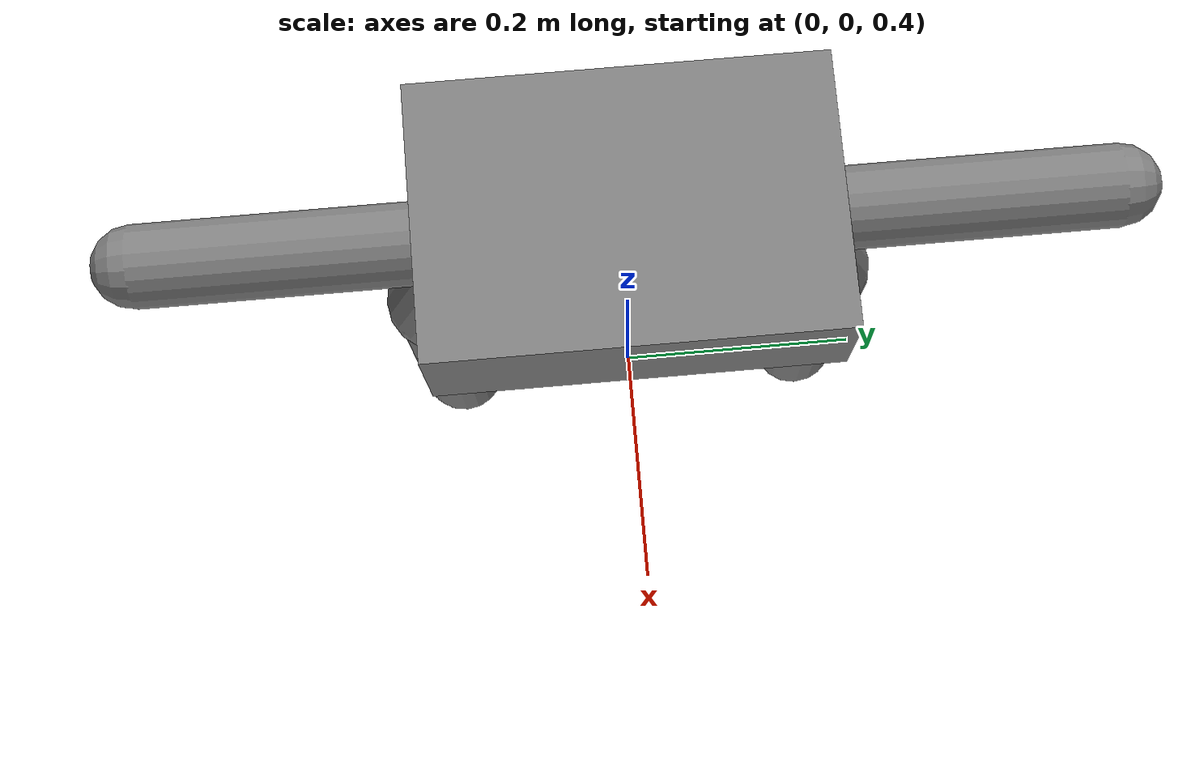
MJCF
<mujoco model="unitree_g1_simple">
  <compiler angle="radian" autolimits="true"/>

  <option timestep="0.002" gravity="0 0 -9.81"/>

  <worldbody>
    <body name="torso" pos="0 0 0.8">
      <geom type="box" size="0.1 0.15 0.05" mass="5.0"/>
      <joint name="root_x" type="slide" axis="1 0 0"/>
      <joint name="root_y" type="slide" axis="0 1 0"/>
      <joint name="root_z" type="slide" axis="0 0 1"/>

      <!-- Left Hip -->
      <body name="left_hip" pos="0 0.1 0">
        <geom type="capsule" size="0.04" fromto="0 0 0 0 0.05 -0.15" mass="0.8"/>
        <joint name="left_hip_pitch" type="hinge" axis="0 1 0" range="-1.57 1.57" damping="0.5"/>

        <!-- Left Knee -->
        <body name="left_knee" pos="0 0.05 -0.15">
          <geom type="capsule" size="0.035" fromto="0 0 0 0 0 -0.25" mass="0.5"/>
          <joint name="left_knee" type="hinge" axis="0 1 0" range="0 2.7" damping="0.5"/>
        </body>
      </body>

      <!-- Right Hip -->
      <body name="right_hip" pos="0 -0.1 0">
        <geom type="capsule" size="0.04" fromto="0 0 0 0 -0.05 -0.15" mass="0.8"/>
        <joint name="right_hip_pitch" type="hinge" axis="0 1 0" range="-1.57 1.57" damping="0.5"/>

        <!-- Right Knee -->
        <body name="right_knee" pos="0 -0.05 -0.15">
          <geom type="capsule" size="0.035" fromto="0 0 0 0 0 -0.25" mass="0.5"/>
          <joint name="right_knee" type="hinge" axis="0 1 0" range="0 2.7" damping="0.5"/>
        </body>
      </body>

      <!-- Left Arm -->
      <body name="left_arm" pos="0 0.15 0">
        <geom type="capsule" size="0.03" fromto="0 0 0 0 0.2 0" mass="0.3"/>
        <joint name="left_shoulder" type="hinge" axis="0 0 1" range="-1.57 1.57" damping="0.3"/>
      </body>

      <!-- Right Arm -->
      <body name="right_arm" pos="0 -0.15 0">
        <geom type="capsule" size="0.03" fromto="0 0 0 0 -0.2 0" mass="0.3"/>
        <joint name="right_shoulder" type="hinge" axis="0 0 1" range="-1.57 1.57" damping="0.3"/>
      </body>
    </body>

    <light pos="0 0 3" dir="0 0 -1" diffuse="0.8 0.8 0.8"/>
  </worldbody>

  <actuator>
    <!-- Leg actuators - high torque motors -->
    <motor name="left_hip_motor" joint="left_hip_pitch" gear="14.5"/>
    <motor name="left_knee_motor" joint="left_knee" gear="9.0"/>
    <motor name="right_hip_motor" joint="right_hip_pitch" gear="14.5"/>
    <motor name="right_knee_motor" joint="right_knee" gear="9.0"/>

    <!-- Arm actuators - lower torque motors -->
    <motor name="left_shoulder_motor" joint="left_shoulder" gear="5.0"/>
    <motor name="right_shoulder_motor" joint="right_shoulder" gear="5.0"/>
  </actuator>

  <!-- Motor and Battery specifications -->
  <custom>
    <!-- Motor specs for leg actuators (Unitree 7520 with 14:1 gear) -->
    <text name="motor_left_hip_motor" data="motor_spec:unitree_7520_14"/>
    <text name="motor_left_knee_motor" data="motor_spec:unitree_5020_9"/>
    <text name="motor_right_hip_motor" data="motor_spec:unitree_7520_14"/>
    <text name="motor_right_knee_motor" data="motor_spec:unitree_5020_9"/>

    <!-- Motor specs for arm actuators (smaller motors) -->
    <text name="motor_left_shoulder_motor" data="motor_spec:unitree_5020_9"/>
    <text name="motor_right_shoulder_motor" data="motor_spec:unitree_5020_9"/>

    <!-- Battery specification (Unitree G1 9Ah Li-ion, 21.6V nominal, ~2hr runtime) -->
    <text name="battery_main" data="battery_spec:unitree_g1_9ah"/>

    <!-- Battery-entity mapping -->
    <text name="battery_entity_robot" data="battery:battery_main"/>
  </custom>
</mujoco>
